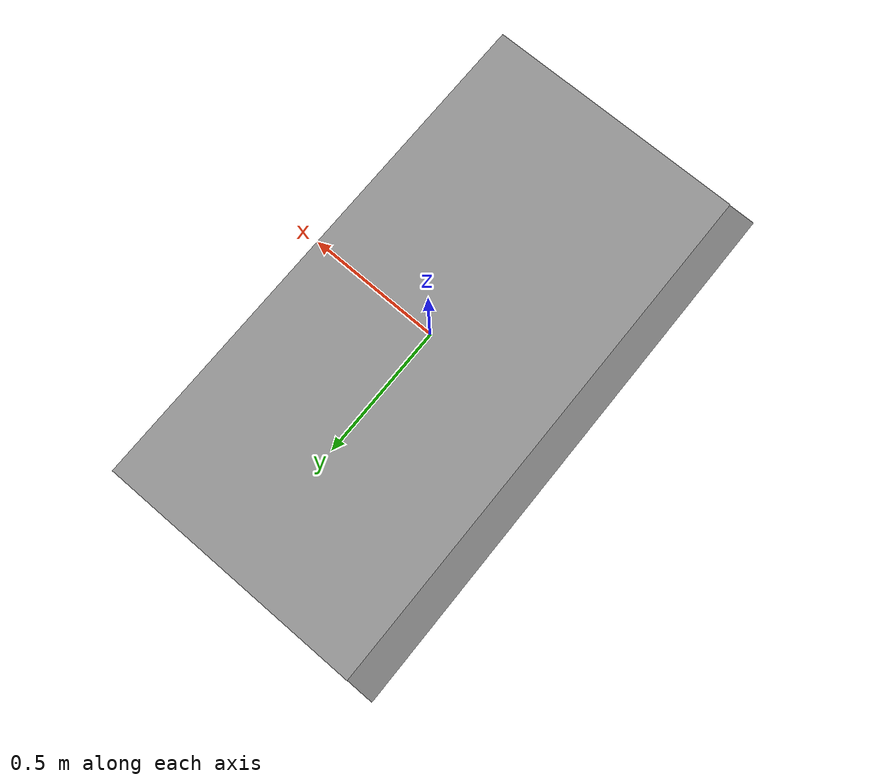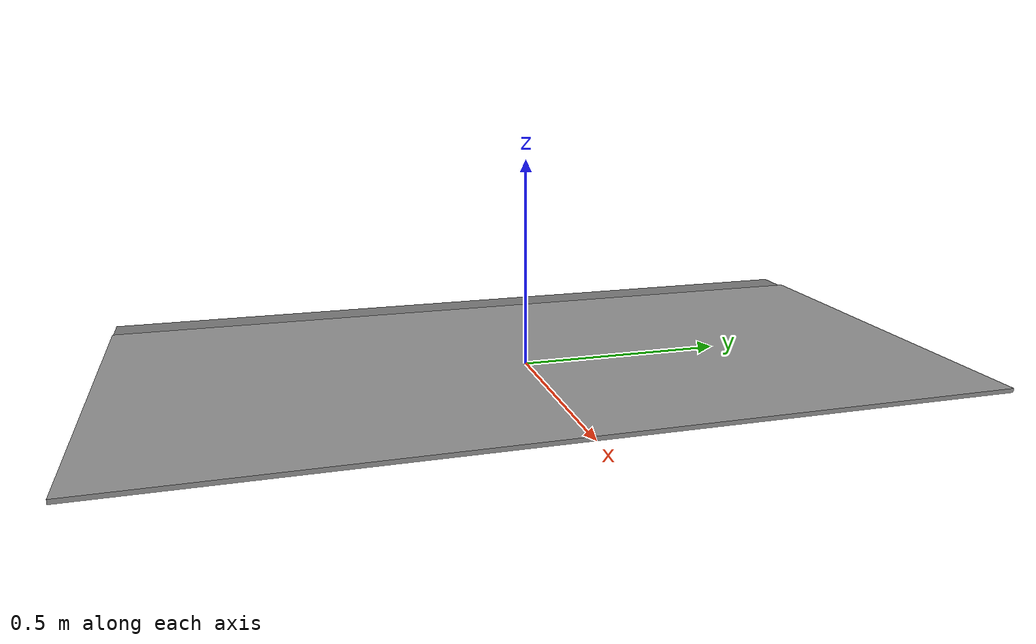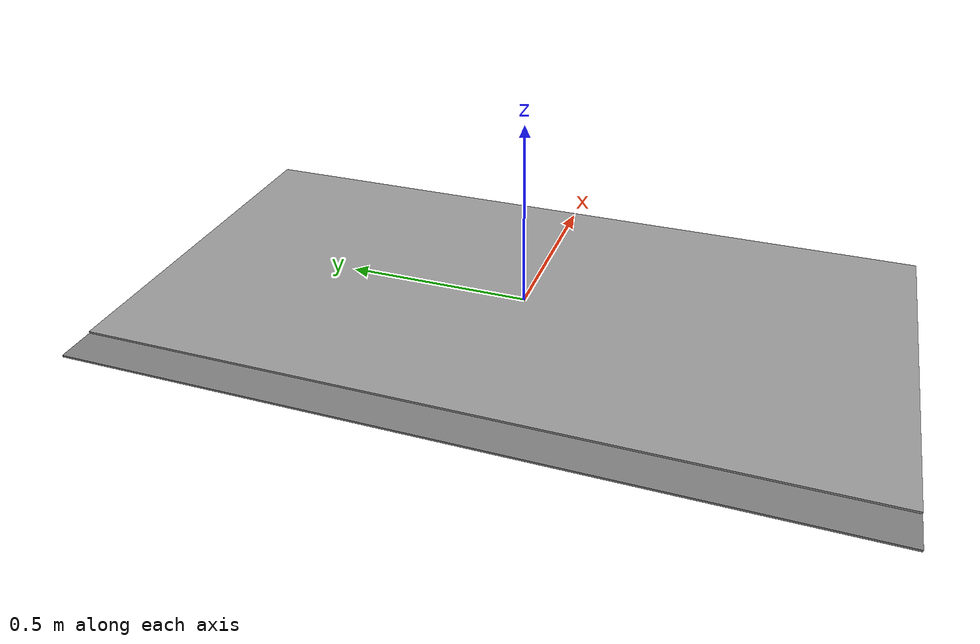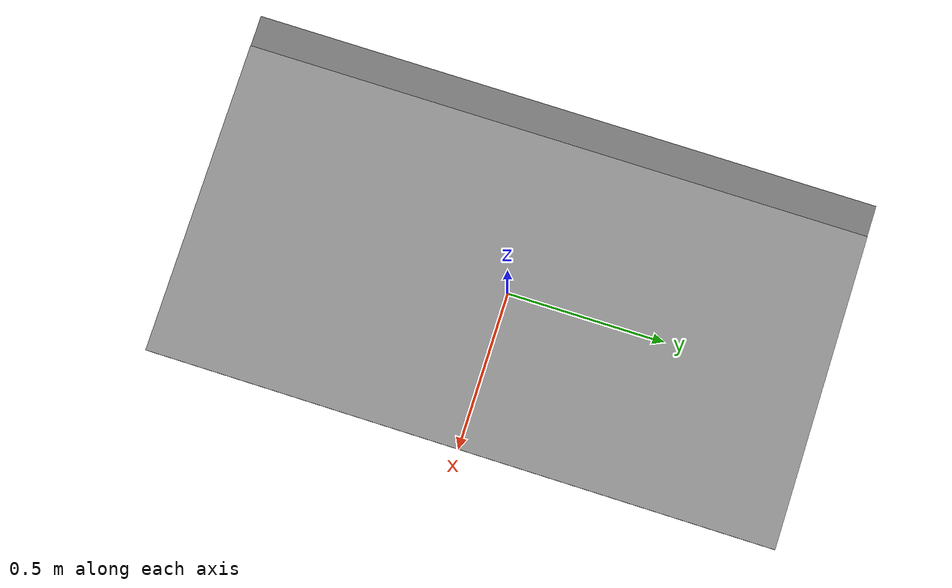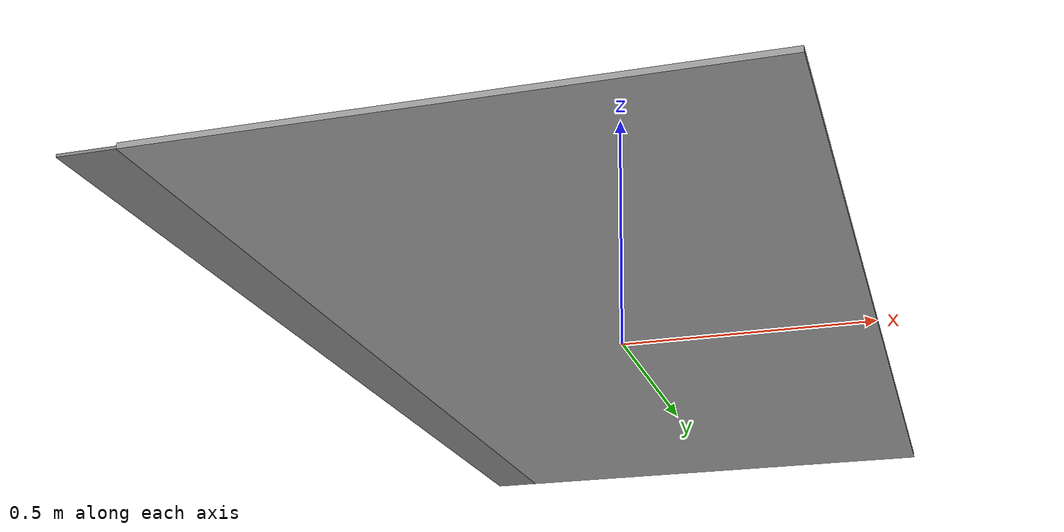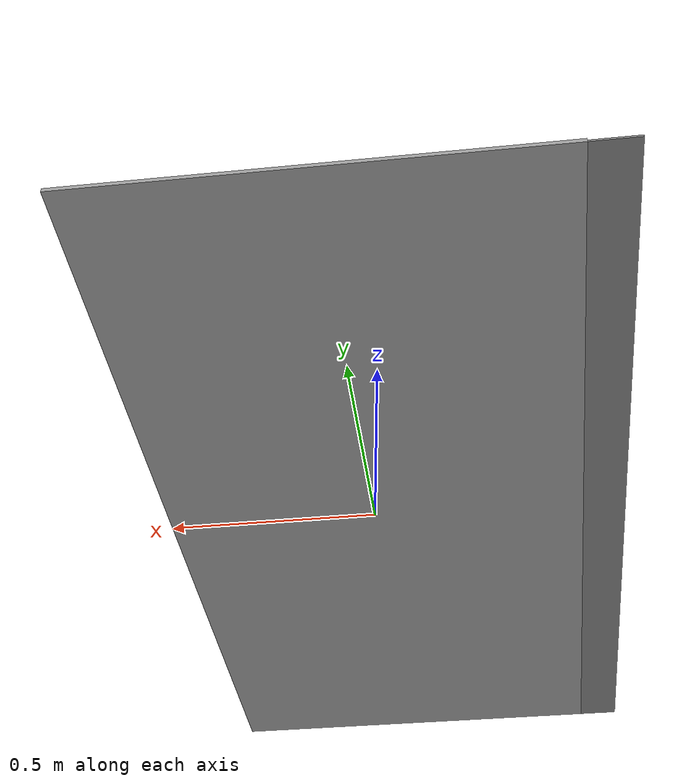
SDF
<?xml version='1.0'?>
<sdf version='1.6'>
  <model name='climbable_step'>
    <static>true</static>
    <link name="link">

      <!-- Lead-in lip: 5 mm high, helps the 32.5 mm wheel start the climb -->
      <collision name="lip_collision">
        <pose>-0.55 0 0.0025 0 0 0</pose>
        <geometry>
          <box><size>0.10 2 0.005</size></box>
        </geometry>
        <surface>
          <friction>
            <ode>
              <mu>1.0</mu>
              <mu2>1.0</mu2>
            </ode>
          </friction>
        </surface>
      </collision>
      <visual name="lip_visual">
        <pose>-0.55 0 0.0025 0 0 0</pose>
        <geometry>
          <box><size>0.10 2 0.005</size></box>
        </geometry>
        <material>
          <ambient>0.5 0.5 0.5 1</ambient>
          <diffuse>0.5 0.5 0.5 1</diffuse>
        </material>
      </visual>

      <!-- Main step: 10 mm high, 1 m deep, 2 m wide -->
      <collision name="collision">
        <pose>0 0 0.005 0 0 0</pose>
        <geometry>
          <box><size>1 2 0.01</size></box>
        </geometry>
        <surface>
          <friction>
            <ode>
              <mu>1.0</mu>
              <mu2>1.0</mu2>
            </ode>
          </friction>
        </surface>
      </collision>
      <visual name="visual">
        <pose>0 0 0.005 0 0 0</pose>
        <geometry>
          <box><size>1 2 0.01</size></box>
        </geometry>
        <material>
          <ambient>0.6 0.6 0.6 1</ambient>
          <diffuse>0.6 0.6 0.6 1</diffuse>
        </material>
      </visual>

    </link>
  </model>
</sdf>
